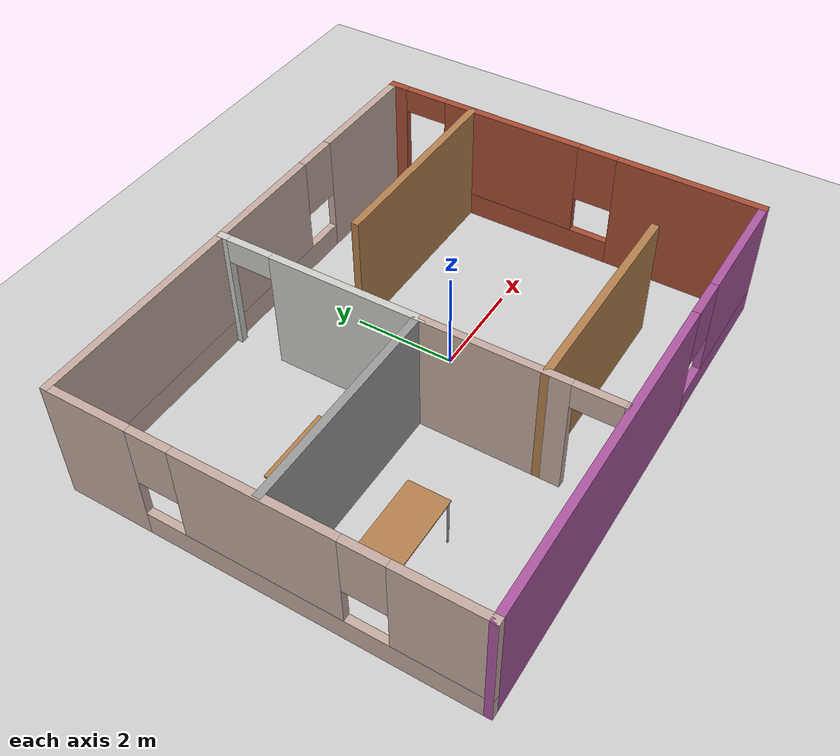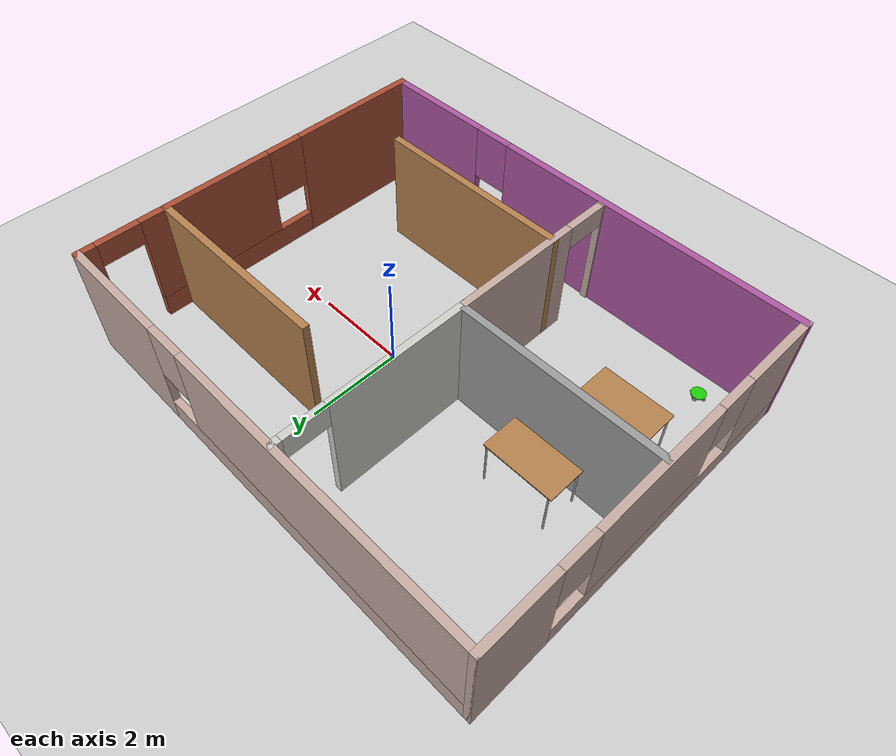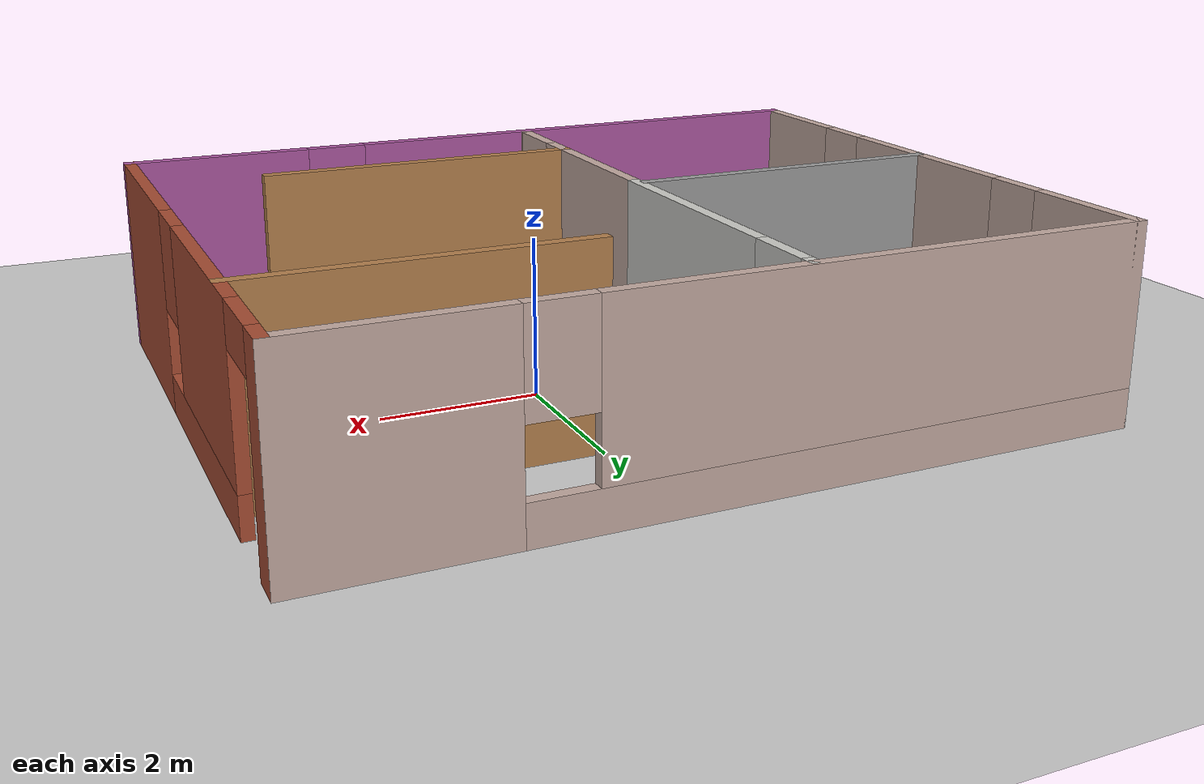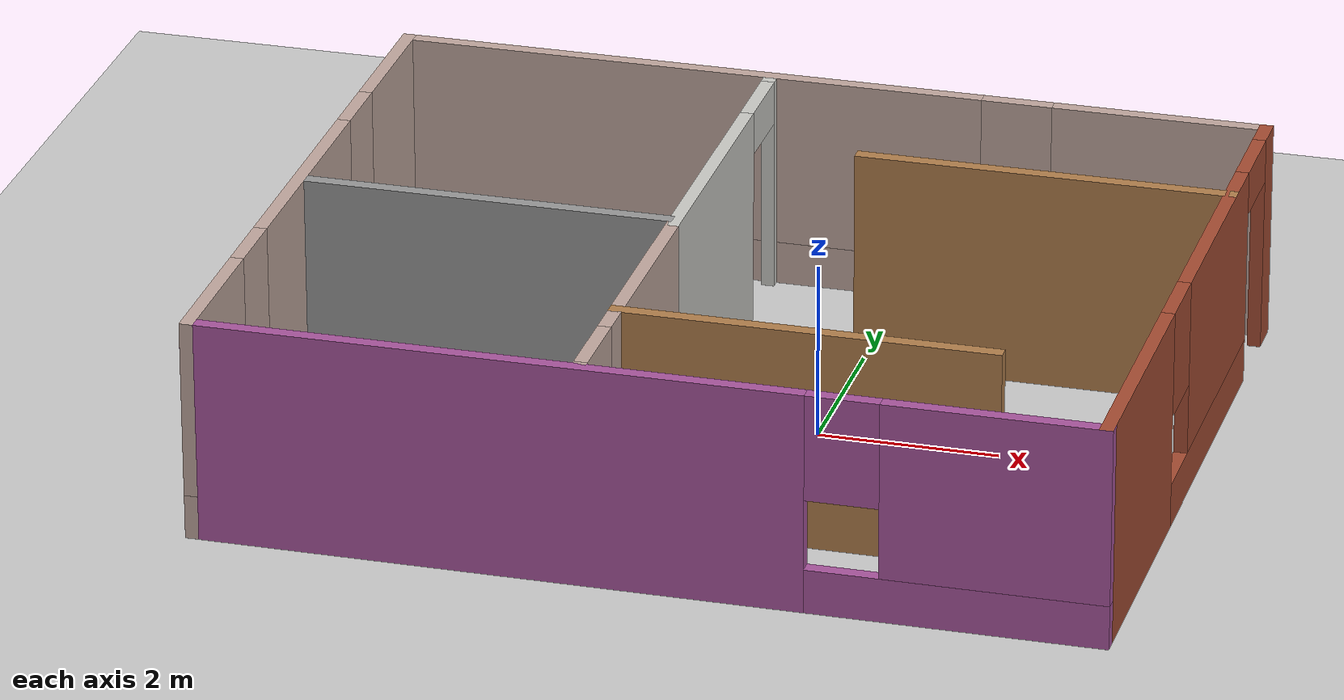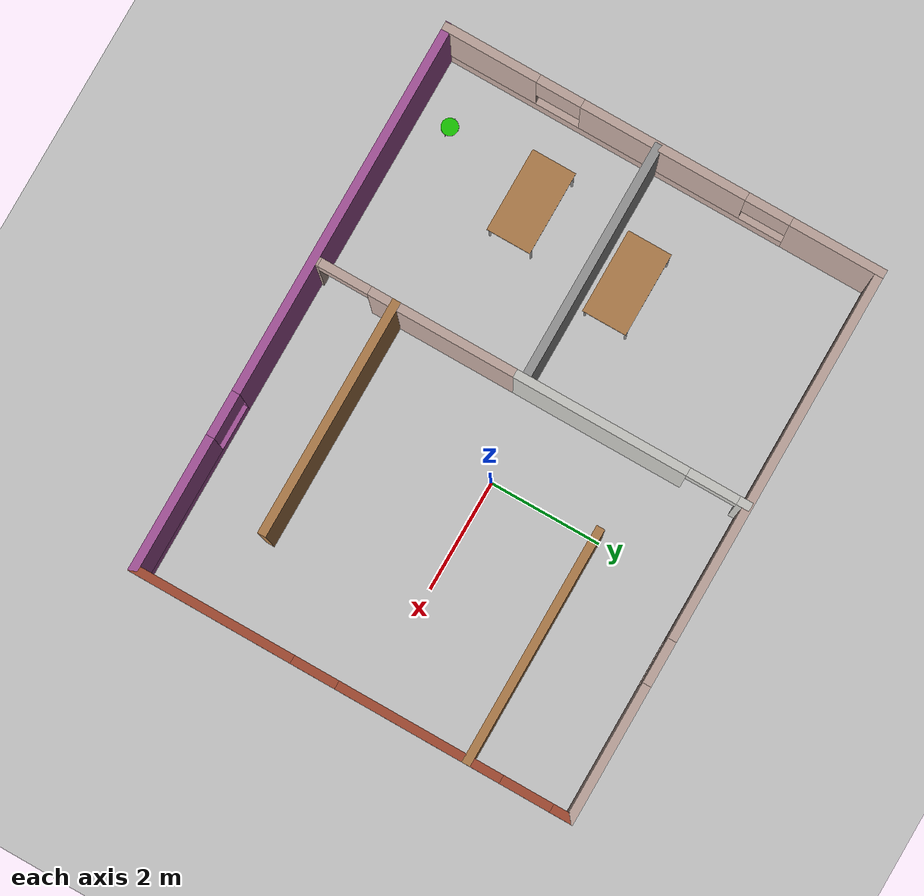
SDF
<sdf version="1.6">
 <world name="default">
  <model name="ground_plane">
   <static>1</static>
   <link name="link">
    <collision name="collision">
     <geometry><plane><normal>0 0 1</normal><size>100 100</size></plane></geometry>
     <surface><friction><ode><mu>100</mu><mu2>50</mu2></ode></friction></surface>
    </collision>
    <visual name="visual">
     <cast_shadows>0</cast_shadows>
     <geometry><plane><normal>0 0 1</normal><size>100 100</size></plane></geometry>
     <material>
      <script><uri>file://media/materials/scripts/gazebo.material</uri><name>Gazebo/Grey</name></script>
     </material>
    </visual>
   </link>
  </model>
  <model name="my_building">
   <pose>-0.837268 -0.153391 0 0 0 -3.14159</pose>
   <link name="Wall_15">
    <collision name="Wall_15_Collision">
     <geometry><box><size>4.25 0.15 2.5</size></box></geometry>
     <pose>0 0 1.25 0 -0 0</pose>
    </collision>
    <visual name="Wall_15_Visual">
     <pose>0 0 1.25 0 -0 0</pose>
     <geometry><box><size>4.25 0.15 2.5</size></box></geometry>
     <material>
      <script><uri>file://media/materials/scripts/gazebo.material</uri><name>Gazebo/Grey</name></script>
      <ambient>1 1 1 1</ambient>
     </material>
     <meta><layer>0</layer></meta>
    </visual>
    <pose>2.84042 0.103421 0 0 -0 3.14159</pose>
   </link>
   <link name="Wall_21">
    <pose>0.686687 -1.84918 0 0 -0 1.5708</pose>
    <visual name="Wall_21_Visual_0">
     <pose>-2.0108 0 1.25 0 -0 0</pose>
     <geometry><box><size>0.228407 0.15 2.5</size></box></geometry>
     <material>
      <script><uri>file://media/materials/scripts/gazebo.material</uri><name>Gazebo/CeilingTiled</name></script>
      <ambient>0.760784 0.662745 0.627451 1</ambient>
     </material>
     <meta><layer>0</layer></meta>
    </visual>
    <collision name="Wall_21_Collision_0">
     <geometry><box><size>0.228407 0.15 2.5</size></box></geometry>
     <pose>-2.0108 0 1.25 0 -0 0</pose>
    </collision>
    <visual name="Wall_21_Visual_1">
     <pose>0.564203 0 1.25 0 -0 0</pose>
     <geometry><box><size>3.12159 0.15 2.5</size></box></geometry>
     <material>
      <script><uri>file://media/materials/scripts/gazebo.material</uri><name>Gazebo/CeilingTiled</name></script>
      <ambient>0.760784 0.662745 0.627451 1</ambient>
     </material>
     <meta><layer>0</layer></meta>
    </visual>
    <collision name="Wall_21_Collision_1">
     <geometry><box><size>3.12159 0.15 2.5</size></box></geometry>
     <pose>0.564203 0 1.25 0 -0 0</pose>
    </collision>
    <visual name="Wall_21_Visual_2">
     <pose>-1.44659 0 2.25 0 -0 0</pose>
     <geometry><box><size>0.9 0.15 0.5</size></box></geometry>
     <material>
      <script><uri>file://media/materials/scripts/gazebo.material</uri><name>Gazebo/CeilingTiled</name></script>
      <ambient>0.760784 0.662745 0.627451 1</ambient>
     </material>
     <meta><layer>0</layer></meta>
    </visual>
    <collision name="Wall_21_Collision_2">
     <geometry><box><size>0.9 0.15 0.5</size></box></geometry>
     <pose>-1.44659 0 2.25 0 -0 0</pose>
    </collision>
   </link>
   <link name="Wall_22">
    <pose>0.686687 2.00082 0 0 -0 1.5708</pose>
    <visual name="Wall_22_Visual_0">
     <pose>-0.482 0 1.25 0 -0 0</pose>
     <geometry><box><size>2.786 0.15 2.5</size></box></geometry>
     <material>
      <script><uri>file://media/materials/scripts/gazebo.material</uri><name>Gazebo/Grey</name></script>
      <ambient>0.760784 0.662745 0.627451 1</ambient>
     </material>
     <meta><layer>0</layer></meta>
    </visual>
    <collision name="Wall_22_Collision_0">
     <geometry><box><size>2.786 0.15 2.5</size></box></geometry>
     <pose>-0.482 0 1.25 0 -0 0</pose>
    </collision>
    <visual name="Wall_22_Visual_1">
     <pose>1.843 0 1.25 0 -0 0</pose>
     <geometry><box><size>0.064001 0.15 2.5</size></box></geometry>
     <material>
      <script><uri>file://media/materials/scripts/gazebo.material</uri><name>Gazebo/Grey</name></script>
      <ambient>0.760784 0.662745 0.627451 1</ambient>
     </material>
     <meta><layer>0</layer></meta>
    </visual>
    <collision name="Wall_22_Collision_1">
     <geometry><box><size>0.064001 0.15 2.5</size></box></geometry>
     <pose>1.843 0 1.25 0 -0 0</pose>
    </collision>
    <visual name="Wall_22_Visual_2">
     <pose>1.361 0 2.25 0 -0 0</pose>
     <geometry><box><size>0.9 0.15 0.5</size></box></geometry>
     <material>
      <script><uri>file://media/materials/scripts/gazebo.material</uri><name>Gazebo/Grey</name></script>
      <ambient>0.760784 0.662745 0.627451 1</ambient>
     </material>
     <meta><layer>0</layer></meta>
    </visual>
    <collision name="Wall_22_Collision_2">
     <geometry><box><size>0.9 0.15 0.5</size></box></geometry>
     <pose>1.361 0 2.25 0 -0 0</pose>
    </collision>
   </link>
   <link name="Wall_24">
    <collision name="Wall_24_Collision">
     <geometry><box><size>4.25 0.15 2.5</size></box></geometry>
     <pose>0 0 1.25 0 -0 0</pose>
    </collision>
    <visual name="Wall_24_Visual">
     <pose>0 0 1.25 0 -0 0</pose>
     <geometry><box><size>4.25 0.15 2.5</size></box></geometry>
     <material>
      <script><uri>file://media/materials/scripts/gazebo.material</uri><name>Gazebo/Wood</name></script>
      <ambient>1 1 1 1</ambient>
     </material>
     <meta><layer>0</layer></meta>
    </visual>
    <pose>-2.875 -2.08896 0 0 -0 0</pose>
   </link>
   <link name="Wall_26">
    <collision name="Wall_26_Collision">
     <geometry><box><size>4.25 0.15 2.5</size></box></geometry>
     <pose>0 0 1.25 0 -0 0</pose>
    </collision>
    <visual name="Wall_26_Visual">
     <pose>0 0 1.25 0 -0 0</pose>
     <geometry><box><size>4.25 0.15 2.5</size></box></geometry>
     <material>
      <script><uri>file://media/materials/scripts/gazebo.material</uri><name>Gazebo/Wood</name></script>
      <ambient>1 1 1 1</ambient>
     </material>
     <meta><layer>0</layer></meta>
    </visual>
    <pose>-1.36331 2.45671 0 0 -0 3.14159</pose>
   </link>
   <link name="Wall_3">
    <pose>-4.925 0 0 0 0 -1.5708</pose>
    <visual name="Wall_3_Visual_0">
     <pose>-2.5333 0 1.25 0 -0 0</pose>
     <geometry><box><size>2.9334 0.15 2.5</size></box></geometry>
     <material>
      <script><uri>file://media/materials/scripts/gazebo.material</uri><name>Gazebo/Bricks</name></script>
      <ambient>1 1 1 1</ambient>
     </material>
     <meta><layer>0</layer></meta>
    </visual>
    <collision name="Wall_3_Collision_0">
     <geometry><box><size>2.9334 0.15 2.5</size></box></geometry>
     <pose>-2.5333 0 1.25 0 -0 0</pose>
    </collision>
    <visual name="Wall_3_Visual_1">
     <pose>3.79243 0 1.25 0 -0 0</pose>
     <geometry><box><size>0.415136 0.15 2.5</size></box></geometry>
     <material>
      <script><uri>file://media/materials/scripts/gazebo.material</uri><name>Gazebo/Bricks</name></script>
      <ambient>1 1 1 1</ambient>
     </material>
     <meta><layer>0</layer></meta>
    </visual>
    <collision name="Wall_3_Collision_1">
     <geometry><box><size>0.415136 0.15 2.5</size></box></geometry>
     <pose>3.79243 0 1.25 0 -0 0</pose>
    </collision>
    <visual name="Wall_3_Visual_2">
     <pose>0.809131 0 0.25 0 -0 0</pose>
     <geometry><box><size>3.75147 0.15 0.5</size></box></geometry>
     <material>
      <script><uri>file://media/materials/scripts/gazebo.material</uri><name>Gazebo/Bricks</name></script>
      <ambient>1 1 1 1</ambient>
     </material>
     <meta><layer>0</layer></meta>
    </visual>
    <collision name="Wall_3_Collision_2">
     <geometry><box><size>3.75147 0.15 0.5</size></box></geometry>
     <pose>0.809131 0 0.25 0 -0 0</pose>
    </collision>
    <visual name="Wall_3_Visual_3">
     <pose>1.20913 0 1.5 0 -0 0</pose>
     <geometry><box><size>2.95146 0.15 2</size></box></geometry>
     <material>
      <script><uri>file://media/materials/scripts/gazebo.material</uri><name>Gazebo/Bricks</name></script>
      <ambient>1 1 1 1</ambient>
     </material>
     <meta><layer>0</layer></meta>
    </visual>
    <collision name="Wall_3_Collision_3">
     <geometry><box><size>2.95146 0.15 2</size></box></geometry>
     <pose>1.20913 0 1.5 0 -0 0</pose>
    </collision>
    <visual name="Wall_3_Visual_4">
     <pose>-0.666601 0 1.9 0 -0 0</pose>
     <geometry><box><size>0.8 0.15 1.2</size></box></geometry>
     <material>
      <script><uri>file://media/materials/scripts/gazebo.material</uri><name>Gazebo/Bricks</name></script>
      <ambient>1 1 1 1</ambient>
     </material>
     <meta><layer>0</layer></meta>
    </visual>
    <collision name="Wall_3_Collision_4">
     <geometry><box><size>0.8 0.15 1.2</size></box></geometry>
     <pose>-0.666601 0 1.9 0 -0 0</pose>
    </collision>
    <visual name="Wall_3_Visual_5">
     <pose>3.13486 0 2.25 0 -0 0</pose>
     <geometry><box><size>0.9 0.15 0.5</size></box></geometry>
     <material>
      <script><uri>file://media/materials/scripts/gazebo.material</uri><name>Gazebo/Bricks</name></script>
      <ambient>1 1 1 1</ambient>
     </material>
     <meta><layer>0</layer></meta>
    </visual>
    <collision name="Wall_3_Collision_5">
     <geometry><box><size>0.9 0.15 0.5</size></box></geometry>
     <pose>3.13486 0 2.25 0 -0 0</pose>
    </collision>
   </link>
   <link name="Wall_6">
    <pose>0 -3.925 0 0 -0 0</pose>
    <visual name="Wall_6_Visual_0">
     <pose>-3.76461 0 1.25 0 -0 0</pose>
     <geometry><box><size>2.47079 0.15 2.5</size></box></geometry>
     <material>
      <script><uri>file://media/materials/scripts/gazebo.material</uri><name>Gazebo/Grey</name></script>
      <ambient>0.760784 0.662745 0.627451 1</ambient>
     </material>
     <meta><layer>0</layer></meta>
    </visual>
    <collision name="Wall_6_Collision_0">
     <geometry><box><size>2.47079 0.15 2.5</size></box></geometry>
     <pose>-3.76461 0 1.25 0 -0 0</pose>
    </collision>
    <visual name="Wall_6_Visual_1">
     <pose>1.23539 0 0.25 0 -0 0</pose>
     <geometry><box><size>7.52921 0.15 0.5</size></box></geometry>
     <material>
      <script><uri>file://media/materials/scripts/gazebo.material</uri><name>Gazebo/Grey</name></script>
      <ambient>0.760784 0.662745 0.627451 1</ambient>
     </material>
     <meta><layer>0</layer></meta>
    </visual>
    <collision name="Wall_6_Collision_1">
     <geometry><box><size>7.52921 0.15 0.5</size></box></geometry>
     <pose>1.23539 0 0.25 0 -0 0</pose>
    </collision>
    <visual name="Wall_6_Visual_2">
     <pose>1.63539 0 1.5 0 -0 0</pose>
     <geometry><box><size>6.72921 0.15 2</size></box></geometry>
     <material>
      <script><uri>file://media/materials/scripts/gazebo.material</uri><name>Gazebo/Grey</name></script>
      <ambient>0.760784 0.662745 0.627451 1</ambient>
     </material>
     <meta><layer>0</layer></meta>
    </visual>
    <collision name="Wall_6_Collision_2">
     <geometry><box><size>6.72921 0.15 2</size></box></geometry>
     <pose>1.63539 0 1.5 0 -0 0</pose>
    </collision>
    <visual name="Wall_6_Visual_3">
     <pose>-2.12921 0 1.9 0 -0 0</pose>
     <geometry><box><size>0.8 0.15 1.2</size></box></geometry>
     <material>
      <script><uri>file://media/materials/scripts/gazebo.material</uri><name>Gazebo/Grey</name></script>
      <ambient>0.760784 0.662745 0.627451 1</ambient>
     </material>
     <meta><layer>0</layer></meta>
    </visual>
    <collision name="Wall_6_Collision_3">
     <geometry><box><size>0.8 0.15 1.2</size></box></geometry>
     <pose>-2.12921 0 1.9 0 -0 0</pose>
    </collision>
   </link>
   <link name="Wall_8">
    <pose>4.925 0 0 0 -0 1.5708</pose>
    <visual name="Wall_8_Visual_0">
     <pose>-3.15397 0 1.25 0 -0 0</pose>
     <geometry><box><size>1.69206 0.15 2.5</size></box></geometry>
     <material>
      <script><uri>file://media/materials/scripts/gazebo.material</uri><name>Gazebo/Grey</name></script>
      <ambient>0.760784 0.662745 0.627451 1</ambient>
     </material>
     <meta><layer>0</layer></meta>
    </visual>
    <collision name="Wall_8_Collision_0">
     <geometry><box><size>1.69206 0.15 2.5</size></box></geometry>
     <pose>-3.15397 0 1.25 0 -0 0</pose>
    </collision>
    <visual name="Wall_8_Visual_1">
     <pose>0.846032 0 0.25 0 -0 0</pose>
     <geometry><box><size>6.30794 0.15 0.5</size></box></geometry>
     <material>
      <script><uri>file://media/materials/scripts/gazebo.material</uri><name>Gazebo/Grey</name></script>
      <ambient>0.760784 0.662745 0.627451 1</ambient>
     </material>
     <meta><layer>0</layer></meta>
    </visual>
    <collision name="Wall_8_Collision_1">
     <geometry><box><size>6.30794 0.15 0.5</size></box></geometry>
     <pose>0.846032 0 0.25 0 -0 0</pose>
    </collision>
    <visual name="Wall_8_Visual_2">
     <pose>-0.01726 0 1.5 0 -0 0</pose>
     <geometry><box><size>2.98135 0.15 2</size></box></geometry>
     <material>
      <script><uri>file://media/materials/scripts/gazebo.material</uri><name>Gazebo/Grey</name></script>
      <ambient>0.760784 0.662745 0.627451 1</ambient>
     </material>
     <meta><layer>0</layer></meta>
    </visual>
    <collision name="Wall_8_Collision_2">
     <geometry><box><size>2.98135 0.15 2</size></box></geometry>
     <pose>-0.01726 0 1.5 0 -0 0</pose>
    </collision>
    <visual name="Wall_8_Visual_3">
     <pose>3.13671 0 1.5 0 -0 0</pose>
     <geometry><box><size>1.72658 0.15 2</size></box></geometry>
     <material>
      <script><uri>file://media/materials/scripts/gazebo.material</uri><name>Gazebo/Grey</name></script>
      <ambient>0.760784 0.662745 0.627451 1</ambient>
     </material>
     <meta><layer>0</layer></meta>
    </visual>
    <collision name="Wall_8_Collision_3">
     <geometry><box><size>1.72658 0.15 2</size></box></geometry>
     <pose>3.13671 0 1.5 0 -0 0</pose>
    </collision>
    <visual name="Wall_8_Visual_4">
     <pose>-1.90794 0 1.9 0 -0 0</pose>
     <geometry><box><size>0.8 0.15 1.2</size></box></geometry>
     <material>
      <script><uri>file://media/materials/scripts/gazebo.material</uri><name>Gazebo/Grey</name></script>
      <ambient>0.760784 0.662745 0.627451 1</ambient>
     </material>
     <meta><layer>0</layer></meta>
    </visual>
    <collision name="Wall_8_Collision_4">
     <geometry><box><size>0.8 0.15 1.2</size></box></geometry>
     <pose>-1.90794 0 1.9 0 -0 0</pose>
    </collision>
    <visual name="Wall_8_Visual_5">
     <pose>1.87342 0 1.9 0 -0 0</pose>
     <geometry><box><size>0.8 0.15 1.2</size></box></geometry>
     <material>
      <script><uri>file://media/materials/scripts/gazebo.material</uri><name>Gazebo/Grey</name></script>
      <ambient>0.760784 0.662745 0.627451 1</ambient>
     </material>
     <meta><layer>0</layer></meta>
    </visual>
    <collision name="Wall_8_Collision_5">
     <geometry><box><size>0.8 0.15 1.2</size></box></geometry>
     <pose>1.87342 0 1.9 0 -0 0</pose>
    </collision>
   </link>
   <link name="Wall_9">
    <pose>0 3.925 0 0 -0 3.14159</pose>
    <visual name="Wall_9_Visual_0">
     <pose>-1.62534 0 1.25 0 -0 0</pose>
     <geometry><box><size>6.74933 0.15 2.5</size></box></geometry>
     <material>
      <script><uri>file://media/materials/scripts/gazebo.material</uri><name>Gazebo/Grey</name></script>
      <ambient>0.666667 0.337255 0.623529 1</ambient>
     </material>
     <meta><layer>0</layer></meta>
    </visual>
    <collision name="Wall_9_Collision_0">
     <geometry><box><size>6.74933 0.15 2.5</size></box></geometry>
     <pose>-1.62534 0 1.25 0 -0 0</pose>
    </collision>
    <visual name="Wall_9_Visual_1">
     <pose>3.37466 0 0.25 0 -0 0</pose>
     <geometry><box><size>3.25067 0.15 0.5</size></box></geometry>
     <material>
      <script><uri>file://media/materials/scripts/gazebo.material</uri><name>Gazebo/Grey</name></script>
      <ambient>0.666667 0.337255 0.623529 1</ambient>
     </material>
     <meta><layer>0</layer></meta>
    </visual>
    <collision name="Wall_9_Collision_1">
     <geometry><box><size>3.25067 0.15 0.5</size></box></geometry>
     <pose>3.37466 0 0.25 0 -0 0</pose>
    </collision>
    <visual name="Wall_9_Visual_2">
     <pose>3.77466 0 1.5 0 -0 0</pose>
     <geometry><box><size>2.45067 0.15 2</size></box></geometry>
     <material>
      <script><uri>file://media/materials/scripts/gazebo.material</uri><name>Gazebo/Grey</name></script>
      <ambient>0.666667 0.337255 0.623529 1</ambient>
     </material>
     <meta><layer>0</layer></meta>
    </visual>
    <collision name="Wall_9_Collision_2">
     <geometry><box><size>2.45067 0.15 2</size></box></geometry>
     <pose>3.77466 0 1.5 0 -0 0</pose>
    </collision>
    <visual name="Wall_9_Visual_3">
     <pose>2.14933 0 1.9 0 -0 0</pose>
     <geometry><box><size>0.8 0.15 1.2</size></box></geometry>
     <material>
      <script><uri>file://media/materials/scripts/gazebo.material</uri><name>Gazebo/Grey</name></script>
      <ambient>0.666667 0.337255 0.623529 1</ambient>
     </material>
     <meta><layer>0</layer></meta>
    </visual>
    <collision name="Wall_9_Collision_3">
     <geometry><box><size>0.8 0.15 1.2</size></box></geometry>
     <pose>2.14933 0 1.9 0 -0 0</pose>
    </collision>
   </link>
   <static>1</static>
  </model>
  <model name="table">
   <static>1</static>
   <link name="link">
    <collision name="surface">
     <pose>0 0 1 0 -0 0</pose>
     <geometry><box><size>1.5 0.8 0.03</size></box></geometry>
     <surface><friction><ode><mu>0.6</mu><mu2>0.6</mu2></ode></friction></surface>
    </collision>
    <visual name="visual1">
     <pose>0 0 1 0 -0 0</pose>
     <geometry><box><size>1.5 0.8 0.03</size></box></geometry>
     <material>
      <script><uri>file://media/materials/scripts/gazebo.material</uri><name>Gazebo/Wood</name></script>
     </material>
    </visual>
    <collision name="front_left_leg">
     <pose>0.68 0.38 0.5 0 -0 0</pose>
     <geometry><cylinder><radius>0.02</radius><length>1</length></cylinder></geometry>
    </collision>
    <visual name="front_left_leg">
     <pose>0.68 0.38 0.5 0 -0 0</pose>
     <geometry><cylinder><radius>0.02</radius><length>1</length></cylinder></geometry>
     <material>
      <script><uri>file://media/materials/scripts/gazebo.material</uri><name>Gazebo/Grey</name></script>
     </material>
    </visual>
    <collision name="front_right_leg">
     <pose>0.68 -0.38 0.5 0 -0 0</pose>
     <geometry><cylinder><radius>0.02</radius><length>1</length></cylinder></geometry>
    </collision>
    <visual name="front_right_leg">
     <pose>0.68 -0.38 0.5 0 -0 0</pose>
     <geometry><cylinder><radius>0.02</radius><length>1</length></cylinder></geometry>
     <material>
      <script><uri>file://media/materials/scripts/gazebo.material</uri><name>Gazebo/Grey</name></script>
     </material>
    </visual>
    <collision name="back_right_leg">
     <pose>-0.68 -0.38 0.5 0 -0 0</pose>
     <geometry><cylinder><radius>0.02</radius><length>1</length></cylinder></geometry>
    </collision>
    <visual name="back_right_leg">
     <pose>-0.68 -0.38 0.5 0 -0 0</pose>
     <geometry><cylinder><radius>0.02</radius><length>1</length></cylinder></geometry>
     <material>
      <script><uri>file://media/materials/scripts/gazebo.material</uri><name>Gazebo/Grey</name></script>
     </material>
    </visual>
    <collision name="back_left_leg">
     <pose>-0.68 0.38 0.5 0 -0 0</pose>
     <geometry><cylinder><radius>0.02</radius><length>1</length></cylinder></geometry>
    </collision>
    <visual name="back_left_leg">
     <pose>-0.68 0.38 0.5 0 -0 0</pose>
     <geometry><cylinder><radius>0.02</radius><length>1</length></cylinder></geometry>
     <material>
      <script><uri>file://media/materials/scripts/gazebo.material</uri><name>Gazebo/Grey</name></script>
     </material>
    </visual>
   </link>
   <pose>-4.19604 -1.654 0 0 -0 0</pose>
  </model>
  <model name="table_0">
   <static>1</static>
   <link name="link">
    <collision name="surface">
     <pose>0 0 1 0 -0 0</pose>
     <geometry><box><size>1.5 0.8 0.03</size></box></geometry>
     <surface><friction><ode><mu>0.6</mu><mu2>0.6</mu2></ode></friction></surface>
    </collision>
    <visual name="visual1">
     <pose>0 0 1 0 -0 0</pose>
     <geometry><box><size>1.5 0.8 0.03</size></box></geometry>
     <material>
      <script><uri>file://media/materials/scripts/gazebo.material</uri><name>Gazebo/Wood</name></script>
     </material>
    </visual>
    <collision name="front_left_leg">
     <pose>0.68 0.38 0.5 0 -0 0</pose>
     <geometry><cylinder><radius>0.02</radius><length>1</length></cylinder></geometry>
    </collision>
    <visual name="front_left_leg">
     <pose>0.68 0.38 0.5 0 -0 0</pose>
     <geometry><cylinder><radius>0.02</radius><length>1</length></cylinder></geometry>
     <material>
      <script><uri>file://media/materials/scripts/gazebo.material</uri><name>Gazebo/Grey</name></script>
     </material>
    </visual>
    <collision name="front_right_leg">
     <pose>0.68 -0.38 0.5 0 -0 0</pose>
     <geometry><cylinder><radius>0.02</radius><length>1</length></cylinder></geometry>
    </collision>
    <visual name="front_right_leg">
     <pose>0.68 -0.38 0.5 0 -0 0</pose>
     <geometry><cylinder><radius>0.02</radius><length>1</length></cylinder></geometry>
     <material>
      <script><uri>file://media/materials/scripts/gazebo.material</uri><name>Gazebo/Grey</name></script>
     </material>
    </visual>
    <collision name="back_right_leg">
     <pose>-0.68 -0.38 0.5 0 -0 0</pose>
     <geometry><cylinder><radius>0.02</radius><length>1</length></cylinder></geometry>
    </collision>
    <visual name="back_right_leg">
     <pose>-0.68 -0.38 0.5 0 -0 0</pose>
     <geometry><cylinder><radius>0.02</radius><length>1</length></cylinder></geometry>
     <material>
      <script><uri>file://media/materials/scripts/gazebo.material</uri><name>Gazebo/Grey</name></script>
     </material>
    </visual>
    <collision name="back_left_leg">
     <pose>-0.68 0.38 0.5 0 -0 0</pose>
     <geometry><cylinder><radius>0.02</radius><length>1</length></cylinder></geometry>
    </collision>
    <visual name="back_left_leg">
     <pose>-0.68 0.38 0.5 0 -0 0</pose>
     <geometry><cylinder><radius>0.02</radius><length>1</length></cylinder></geometry>
     <material>
      <script><uri>file://media/materials/scripts/gazebo.material</uri><name>Gazebo/Grey</name></script>
     </material>
    </visual>
   </link>
   <pose>-3.81431 0.334745 0 0 -0 0</pose>
  </model>
  <model name="my_model_1">
   <link name="link_0">
    <pose>0 0 0.034444 0 -0 0</pose>
    <inertial>
     <mass>1</mass>
     <inertia><ixx>0.145833</ixx><ixy>0</ixy><ixz>0</ixz><iyy>0.145833</iyy><iyz>0</iyz><izz>0.125</izz></inertia>
    </inertial>
    <visual name="visual">
     <geometry><cylinder><radius>0.15</radius><length>0.02</length></cylinder></geometry>
     <material>
      <lighting>1</lighting>
      <script><uri>file://media/materials/scripts/gazebo.material</uri><name>Gazebo/Grey</name></script>
      <shader type="pixel"><normal_map>__default__</normal_map></shader>
      <ambient>0.01 0.5 0.01 1</ambient>
      <diffuse>0.1 0.8 0.01 1</diffuse>
      <specular>0.01 0.01 0.01 1</specular>
      <emissive>0 0 0 1</emissive>
     </material>
    </visual>
    <collision name="collision">
     <geometry><cylinder><radius>0.15</radius><length>0.02</length></cylinder></geometry>
     <surface>
      <friction>
       <ode><mu>1</mu><mu2>1</mu2><fdir1>0 0 0</fdir1><slip1>0</slip1><slip2>0</slip2></ode>
       <torsional>
        <coefficient>1</coefficient>
        <patch_radius>0</patch_radius>
        <surface_radius>0</surface_radius>
        <use_patch_radius>1</use_patch_radius>
        <ode><slip>0</slip></ode>
       </torsional>
      </friction>
      <bounce><restitution_coefficient>0</restitution_coefficient><threshold>1e+06</threshold></bounce>
      <contact>
       <collide_without_contact>0</collide_without_contact>
       <collide_without_contact_bitmask>1</collide_without_contact_bitmask>
       <collide_bitmask>1</collide_bitmask>
       <ode>
        <soft_cfm>0</soft_cfm>
        <soft_erp>0.2</soft_erp>
        <kp>1e+13</kp>
        <kd>1</kd>
        <max_vel>0.01</max_vel>
        <min_depth>0</min_depth>
       </ode>
       <bullet>
        <split_impulse>1</split_impulse>
        <split_impulse_penetration_threshold>-0.01</split_impulse_penetration_threshold>
        <soft_cfm>0</soft_cfm>
        <soft_erp>0.2</soft_erp>
        <kp>1e+13</kp>
        <kd>1</kd>
       </bullet>
      </contact>
     </surface>
    </collision>
   </link>
   <link name="link_1">
    <pose>0.12 0 -0.030556 1.5708 -0 0</pose>
    <inertial>
     <mass>1</mass>
     <inertia><ixx>0.145833</ixx><ixy>0</ixy><ixz>0</ixz><iyy>0.145833</iyy><iyz>0</iyz><izz>0.125</izz></inertia>
    </inertial>
    <visual name="visual">
     <geometry><cylinder><radius>0.05</radius><length>0.01</length></cylinder></geometry>
     <material>
      <lighting>1</lighting>
      <script><uri>file://media/materials/scripts/gazebo.material</uri><name>Gazebo/Grey</name></script>
      <shader type="pixel"><normal_map>__default__</normal_map></shader>
      <ambient>0.4 0.4 0.4 1</ambient>
      <diffuse>0.4 0.4 0.4 1</diffuse>
      <specular>0.01 0.01 0.01 1</specular>
      <emissive>0 0 0 1</emissive>
     </material>
    </visual>
    <collision name="collision">
     <geometry><cylinder><radius>0.05</radius><length>0.01</length></cylinder></geometry>
     <surface>
      <friction>
       <ode><mu>1</mu><mu2>1</mu2><fdir1>0 0 0</fdir1><slip1>0</slip1><slip2>0</slip2></ode>
       <torsional>
        <coefficient>1</coefficient>
        <patch_radius>0</patch_radius>
        <surface_radius>0</surface_radius>
        <use_patch_radius>1</use_patch_radius>
        <ode><slip>0</slip></ode>
       </torsional>
      </friction>
      <bounce><restitution_coefficient>0</restitution_coefficient><threshold>1e+06</threshold></bounce>
      <contact>
       <collide_without_contact>0</collide_without_contact>
       <collide_without_contact_bitmask>1</collide_without_contact_bitmask>
       <collide_bitmask>1</collide_bitmask>
       <ode>
        <soft_cfm>0</soft_cfm>
        <soft_erp>0.2</soft_erp>
        <kp>1e+13</kp>
        <kd>1</kd>
        <max_vel>0.01</max_vel>
        <min_depth>0</min_depth>
       </ode>
       <bullet>
        <split_impulse>1</split_impulse>
        <split_impulse_penetration_threshold>-0.01</split_impulse_penetration_threshold>
        <soft_cfm>0</soft_cfm>
        <soft_erp>0.2</soft_erp>
        <kp>1e+13</kp>
        <kd>1</kd>
       </bullet>
      </contact>
     </surface>
    </collision>
   </link>
   <link name="link_1_clone">
    <pose>0 0.12 -0.030556 1.5708 -0 0</pose>
    <inertial>
     <mass>1</mass>
     <inertia><ixx>0.145833</ixx><ixy>0</ixy><ixz>0</ixz><iyy>0.145833</iyy><iyz>0</iyz><izz>0.125</izz></inertia>
    </inertial>
    <visual name="visual">
     <geometry><cylinder><radius>0.05</radius><length>0.01</length></cylinder></geometry>
     <material>
      <lighting>1</lighting>
      <script><uri>file://media/materials/scripts/gazebo.material</uri><name>Gazebo/Grey</name></script>
      <shader type="pixel"><normal_map>__default__</normal_map></shader>
      <ambient>0.4 0.4 0.4 1</ambient>
      <diffuse>0.4 0.4 0.4 1</diffuse>
      <specular>0.01 0.01 0.01 1</specular>
      <emissive>0 0 0 1</emissive>
     </material>
    </visual>
    <collision name="collision">
     <geometry><cylinder><radius>0.05</radius><length>0.01</length></cylinder></geometry>
     <surface>
      <friction>
       <ode><mu>1</mu><mu2>1</mu2><fdir1>0 0 0</fdir1><slip1>0</slip1><slip2>0</slip2></ode>
       <torsional>
        <coefficient>1</coefficient>
        <patch_radius>0</patch_radius>
        <surface_radius>0</surface_radius>
        <use_patch_radius>1</use_patch_radius>
        <ode><slip>0</slip></ode>
       </torsional>
      </friction>
      <bounce><restitution_coefficient>0</restitution_coefficient><threshold>1e+06</threshold></bounce>
      <contact>
       <collide_without_contact>0</collide_without_contact>
       <collide_without_contact_bitmask>1</collide_without_contact_bitmask>
       <collide_bitmask>1</collide_bitmask>
       <ode>
        <soft_cfm>0</soft_cfm>
        <soft_erp>0.2</soft_erp>
        <kp>1e+13</kp>
        <kd>1</kd>
        <max_vel>0.01</max_vel>
        <min_depth>0</min_depth>
       </ode>
       <bullet>
        <split_impulse>1</split_impulse>
        <split_impulse_penetration_threshold>-0.01</split_impulse_penetration_threshold>
        <soft_cfm>0</soft_cfm>
        <soft_erp>0.2</soft_erp>
        <kp>1e+13</kp>
        <kd>1</kd>
       </bullet>
      </contact>
     </surface>
    </collision>
   </link>
   <link name="link_1_clone_0">
    <pose>0 -0.12 -0.030556 1.5708 -0 0</pose>
    <inertial>
     <mass>1</mass>
     <inertia><ixx>0.145833</ixx><ixy>0</ixy><ixz>0</ixz><iyy>0.145833</iyy><iyz>0</iyz><izz>0.125</izz></inertia>
    </inertial>
    <visual name="visual">
     <geometry><cylinder><radius>0.05</radius><length>0.01</length></cylinder></geometry>
     <material>
      <lighting>1</lighting>
      <script><uri>file://media/materials/scripts/gazebo.material</uri><name>Gazebo/Grey</name></script>
      <shader type="pixel"><normal_map>__default__</normal_map></shader>
      <ambient>0.4 0.4 0.4 1</ambient>
      <diffuse>0.4 0.4 0.4 1</diffuse>
      <specular>0.01 0.01 0.01 1</specular>
      <emissive>0 0 0 1</emissive>
     </material>
    </visual>
    <collision name="collision">
     <geometry><cylinder><radius>0.05</radius><length>0.01</length></cylinder></geometry>
     <surface>
      <friction>
       <ode><mu>1</mu><mu2>1</mu2><fdir1>0 0 0</fdir1><slip1>0</slip1><slip2>0</slip2></ode>
       <torsional>
        <coefficient>1</coefficient>
        <patch_radius>0</patch_radius>
        <surface_radius>0</surface_radius>
        <use_patch_radius>1</use_patch_radius>
        <ode><slip>0</slip></ode>
       </torsional>
      </friction>
      <bounce><restitution_coefficient>0</restitution_coefficient><threshold>1e+06</threshold></bounce>
      <contact>
       <collide_without_contact>0</collide_without_contact>
       <collide_without_contact_bitmask>1</collide_without_contact_bitmask>
       <collide_bitmask>1</collide_bitmask>
       <ode>
        <soft_cfm>0</soft_cfm>
        <soft_erp>0.2</soft_erp>
        <kp>1e+13</kp>
        <kd>1</kd>
        <max_vel>0.01</max_vel>
        <min_depth>0</min_depth>
       </ode>
       <bullet>
        <split_impulse>1</split_impulse>
        <split_impulse_penetration_threshold>-0.01</split_impulse_penetration_threshold>
        <soft_cfm>0</soft_cfm>
        <soft_erp>0.2</soft_erp>
        <kp>1e+13</kp>
        <kd>1</kd>
       </bullet>
      </contact>
     </surface>
    </collision>
   </link>
   <link name="link_1_clone_1">
    <pose>-0.12 0 -0.030556 1.5708 -0 0</pose>
    <inertial>
     <mass>1</mass>
     <inertia><ixx>0.145833</ixx><ixy>0</ixy><ixz>0</ixz><iyy>0.145833</iyy><iyz>0</iyz><izz>0.125</izz></inertia>
    </inertial>
    <visual name="visual">
     <geometry><cylinder><radius>0.05</radius><length>0.01</length></cylinder></geometry>
     <material>
      <lighting>1</lighting>
      <script><uri>file://media/materials/scripts/gazebo.material</uri><name>Gazebo/Grey</name></script>
      <shader type="pixel"><normal_map>__default__</normal_map></shader>
      <ambient>0.4 0.4 0.4 1</ambient>
      <diffuse>0.4 0.4 0.4 1</diffuse>
      <specular>0.01 0.01 0.01 1</specular>
      <emissive>0 0 0 1</emissive>
     </material>
    </visual>
    <collision name="collision">
     <geometry><cylinder><radius>0.05</radius><length>0.01</length></cylinder></geometry>
     <surface>
      <friction>
       <ode><mu>1</mu><mu2>1</mu2><fdir1>0 0 0</fdir1><slip1>0</slip1><slip2>0</slip2></ode>
       <torsional>
        <coefficient>1</coefficient>
        <patch_radius>0</patch_radius>
        <surface_radius>0</surface_radius>
        <use_patch_radius>1</use_patch_radius>
        <ode><slip>0</slip></ode>
       </torsional>
      </friction>
      <bounce><restitution_coefficient>0</restitution_coefficient><threshold>1e+06</threshold></bounce>
      <contact>
       <collide_without_contact>0</collide_without_contact>
       <collide_without_contact_bitmask>1</collide_without_contact_bitmask>
       <collide_bitmask>1</collide_bitmask>
       <ode>
        <soft_cfm>0</soft_cfm>
        <soft_erp>0.2</soft_erp>
        <kp>1e+13</kp>
        <kd>1</kd>
        <max_vel>0.01</max_vel>
        <min_depth>0</min_depth>
       </ode>
       <bullet>
        <split_impulse>1</split_impulse>
        <split_impulse_penetration_threshold>-0.01</split_impulse_penetration_threshold>
        <soft_cfm>0</soft_cfm>
        <soft_erp>0.2</soft_erp>
        <kp>1e+13</kp>
        <kd>1</kd>
       </bullet>
      </contact>
     </surface>
    </collision>
   </link>
   <link name="link_3">
    <pose>-0.12 0 0.021944 0 -0 0</pose>
    <inertial>
     <mass>1</mass>
     <inertia><ixx>0.145833</ixx><ixy>0</ixy><ixz>0</ixz><iyy>0.145833</iyy><iyz>0</iyz><izz>0.125</izz></inertia>
    </inertial>
    <visual name="visual">
     <geometry><cylinder><radius>0.03</radius><length>0.005</length></cylinder></geometry>
     <material>
      <lighting>1</lighting>
      <script><uri>file://media/materials/scripts/gazebo.material</uri><name>Gazebo/Grey</name></script>
      <shader type="pixel"><normal_map>__default__</normal_map></shader>
      <ambient>0.3 0.3 0.7 1</ambient>
      <diffuse>0.7 0.7 0.9 1</diffuse>
      <specular>0.01 0.01 0.01 1</specular>
      <emissive>0 0 0 1</emissive>
     </material>
    </visual>
    <collision name="collision">
     <geometry><cylinder><radius>0.03</radius><length>0.005</length></cylinder></geometry>
     <surface>
      <friction>
       <ode><mu>1</mu><mu2>1</mu2><fdir1>0 0 0</fdir1><slip1>0</slip1><slip2>0</slip2></ode>
       <torsional>
        <coefficient>1</coefficient>
        <patch_radius>0</patch_radius>
        <surface_radius>0</surface_radius>
        <use_patch_radius>1</use_patch_radius>
        <ode><slip>0</slip></ode>
       </torsional>
      </friction>
      <bounce><restitution_coefficient>0</restitution_coefficient><threshold>1e+06</threshold></bounce>
      <contact>
       <collide_without_contact>0</collide_without_contact>
       <collide_without_contact_bitmask>1</collide_without_contact_bitmask>
       <collide_bitmask>1</collide_bitmask>
       <ode>
        <soft_cfm>0</soft_cfm>
        <soft_erp>0.2</soft_erp>
        <kp>1e+13</kp>
        <kd>1</kd>
        <max_vel>0.01</max_vel>
        <min_depth>0</min_depth>
       </ode>
       <bullet>
        <split_impulse>1</split_impulse>
        <split_impulse_penetration_threshold>-0.01</split_impulse_penetration_threshold>
        <soft_cfm>0</soft_cfm>
        <soft_erp>0.2</soft_erp>
        <kp>1e+13</kp>
        <kd>1</kd>
       </bullet>
      </contact>
     </surface>
    </collision>
   </link>
   <link name="link_3_clone">
    <pose>0.12 0 0.021944 0 -0 0</pose>
    <inertial>
     <mass>1</mass>
     <inertia><ixx>0.145833</ixx><ixy>0</ixy><ixz>0</ixz><iyy>0.145833</iyy><iyz>0</iyz><izz>0.125</izz></inertia>
    </inertial>
    <visual name="visual">
     <geometry><cylinder><radius>0.03</radius><length>0.005</length></cylinder></geometry>
     <material>
      <lighting>1</lighting>
      <script><uri>file://media/materials/scripts/gazebo.material</uri><name>Gazebo/Grey</name></script>
      <shader type="pixel"><normal_map>__default__</normal_map></shader>
      <ambient>0.3 0.3 0.7 1</ambient>
      <diffuse>0.7 0.7 0.9 1</diffuse>
      <specular>0.01 0.01 0.01 1</specular>
      <emissive>0 0 0 1</emissive>
     </material>
    </visual>
    <collision name="collision">
     <geometry><cylinder><radius>0.03</radius><length>0.005</length></cylinder></geometry>
     <surface>
      <friction>
       <ode><mu>1</mu><mu2>1</mu2><fdir1>0 0 0</fdir1><slip1>0</slip1><slip2>0</slip2></ode>
       <torsional>
        <coefficient>1</coefficient>
        <patch_radius>0</patch_radius>
        <surface_radius>0</surface_radius>
        <use_patch_radius>1</use_patch_radius>
        <ode><slip>0</slip></ode>
       </torsional>
      </friction>
      <bounce><restitution_coefficient>0</restitution_coefficient><threshold>1e+06</threshold></bounce>
      <contact>
       <collide_without_contact>0</collide_without_contact>
       <collide_without_contact_bitmask>1</collide_without_contact_bitmask>
       <collide_bitmask>1</collide_bitmask>
       <ode>
        <soft_cfm>0</soft_cfm>
        <soft_erp>0.2</soft_erp>
        <kp>1e+13</kp>
        <kd>1</kd>
        <max_vel>0.01</max_vel>
        <min_depth>0</min_depth>
       </ode>
       <bullet>
        <split_impulse>1</split_impulse>
        <split_impulse_penetration_threshold>-0.01</split_impulse_penetration_threshold>
        <soft_cfm>0</soft_cfm>
        <soft_erp>0.2</soft_erp>
        <kp>1e+13</kp>
        <kd>1</kd>
       </bullet>
      </contact>
     </surface>
    </collision>
   </link>
   <link name="link_3_clone_0">
    <pose>0 0.12 0.021944 0 -0 0</pose>
    <inertial>
     <mass>1</mass>
     <inertia><ixx>0.145833</ixx><ixy>0</ixy><ixz>0</ixz><iyy>0.145833</iyy><iyz>0</iyz><izz>0.125</izz></inertia>
    </inertial>
    <visual name="visual">
     <geometry><cylinder><radius>0.03</radius><length>0.005</length></cylinder></geometry>
     <material>
      <lighting>1</lighting>
      <script><uri>file://media/materials/scripts/gazebo.material</uri><name>Gazebo/Grey</name></script>
      <shader type="pixel"><normal_map>__default__</normal_map></shader>
      <ambient>0.3 0.3 0.7 1</ambient>
      <diffuse>0.7 0.7 0.9 1</diffuse>
      <specular>0.01 0.01 0.01 1</specular>
      <emissive>0 0 0 1</emissive>
     </material>
    </visual>
    <collision name="collision">
     <geometry><cylinder><radius>0.03</radius><length>0.005</length></cylinder></geometry>
     <surface>
      <friction>
       <ode><mu>1</mu><mu2>1</mu2><fdir1>0 0 0</fdir1><slip1>0</slip1><slip2>0</slip2></ode>
       <torsional>
        <coefficient>1</coefficient>
        <patch_radius>0</patch_radius>
        <surface_radius>0</surface_radius>
        <use_patch_radius>1</use_patch_radius>
        <ode><slip>0</slip></ode>
       </torsional>
      </friction>
      <bounce><restitution_coefficient>0</restitution_coefficient><threshold>1e+06</threshold></bounce>
      <contact>
       <collide_without_contact>0</collide_without_contact>
       <collide_without_contact_bitmask>1</collide_without_contact_bitmask>
       <collide_bitmask>1</collide_bitmask>
       <ode>
        <soft_cfm>0</soft_cfm>
        <soft_erp>0.2</soft_erp>
        <kp>1e+13</kp>
        <kd>1</kd>
        <max_vel>0.01</max_vel>
        <min_depth>0</min_depth>
       </ode>
       <bullet>
        <split_impulse>1</split_impulse>
        <split_impulse_penetration_threshold>-0.01</split_impulse_penetration_threshold>
        <soft_cfm>0</soft_cfm>
        <soft_erp>0.2</soft_erp>
        <kp>1e+13</kp>
        <kd>1</kd>
       </bullet>
      </contact>
     </surface>
    </collision>
   </link>
   <link name="link_3_clone_1">
    <pose>0 -0.12 0.021944 0 -0 0</pose>
    <inertial>
     <mass>1</mass>
     <inertia><ixx>0.145833</ixx><ixy>0</ixy><ixz>0</ixz><iyy>0.145833</iyy><iyz>0</iyz><izz>0.125</izz></inertia>
    </inertial>
    <visual name="visual">
     <geometry><cylinder><radius>0.03</radius><length>0.005</length></cylinder></geometry>
     <material>
      <lighting>1</lighting>
      <script><uri>file://media/materials/scripts/gazebo.material</uri><name>Gazebo/Grey</name></script>
      <shader type="pixel"><normal_map>__default__</normal_map></shader>
      <ambient>0.3 0.3 0.7 1</ambient>
      <diffuse>0.7 0.7 0.9 1</diffuse>
      <specular>0.01 0.01 0.01 1</specular>
      <emissive>0 0 0 1</emissive>
     </material>
    </visual>
    <collision name="collision">
     <geometry><cylinder><radius>0.03</radius><length>0.005</length></cylinder></geometry>
     <surface>
      <friction>
       <ode><mu>1</mu><mu2>1</mu2><fdir1>0 0 0</fdir1><slip1>0</slip1><slip2>0</slip2></ode>
       <torsional>
        <coefficient>1</coefficient>
        <patch_radius>0</patch_radius>
        <surface_radius>0</surface_radius>
        <use_patch_radius>1</use_patch_radius>
        <ode><slip>0</slip></ode>
       </torsional>
      </friction>
      <bounce><restitution_coefficient>0</restitution_coefficient><threshold>1e+06</threshold></bounce>
      <contact>
       <collide_without_contact>0</collide_without_contact>
       <collide_without_contact_bitmask>1</collide_without_contact_bitmask>
       <collide_bitmask>1</collide_bitmask>
       <ode>
        <soft_cfm>0</soft_cfm>
        <soft_erp>0.2</soft_erp>
        <kp>1e+13</kp>
        <kd>1</kd>
        <max_vel>0.01</max_vel>
        <min_depth>0</min_depth>
       </ode>
       <bullet>
        <split_impulse>1</split_impulse>
        <split_impulse_penetration_threshold>-0.01</split_impulse_penetration_threshold>
        <soft_cfm>0</soft_cfm>
        <soft_erp>0.2</soft_erp>
        <kp>1e+13</kp>
        <kd>1</kd>
       </bullet>
      </contact>
     </surface>
    </collision>
   </link>
   <joint name="link_0_JOINT_0" type="revolute">
    <parent>link_0</parent>
    <child>link_3_clone</child>
    <axis>
     <xyz>0 0 1</xyz>
     <use_parent_model_frame>0</use_parent_model_frame>
     <limit>
      <lower>-1.79769e+308</lower>
      <upper>1.79769e+308</upper>
      <effort>-1</effort>
      <velocity>-1</velocity>
     </limit>
     <dynamics>
      <spring_reference>0</spring_reference>
      <spring_stiffness>0</spring_stiffness>
      <damping>0</damping>
      <friction>0</friction>
     </dynamics>
    </axis>
    <physics>
     <ode><limit><cfm>0</cfm><erp>0.2</erp></limit><suspension><cfm>0</cfm><erp>0.2</erp></suspension></ode>
    </physics>
   </joint>
   <joint name="link_0_JOINT_1" type="revolute">
    <parent>link_0</parent>
    <child>link_3_clone_0</child>
    <axis>
     <xyz>0 0 1</xyz>
     <use_parent_model_frame>0</use_parent_model_frame>
     <limit>
      <lower>-1.79769e+308</lower>
      <upper>1.79769e+308</upper>
      <effort>-1</effort>
      <velocity>-1</velocity>
     </limit>
     <dynamics>
      <spring_reference>0</spring_reference>
      <spring_stiffness>0</spring_stiffness>
      <damping>0</damping>
      <friction>0</friction>
     </dynamics>
    </axis>
    <physics>
     <ode><limit><cfm>0</cfm><erp>0.2</erp></limit><suspension><cfm>0</cfm><erp>0.2</erp></suspension></ode>
    </physics>
   </joint>
   <joint name="link_0_JOINT_2" type="revolute">
    <parent>link_0</parent>
    <child>link_3_clone_1</child>
    <axis>
     <xyz>0 0 1</xyz>
     <use_parent_model_frame>0</use_parent_model_frame>
     <limit>
      <lower>-1.79769e+308</lower>
      <upper>1.79769e+308</upper>
      <effort>-1</effort>
      <velocity>-1</velocity>
     </limit>
     <dynamics>
      <spring_reference>0</spring_reference>
      <spring_stiffness>0</spring_stiffness>
      <damping>0</damping>
      <friction>0</friction>
     </dynamics>
    </axis>
    <physics>
     <ode><limit><cfm>0</cfm><erp>0.2</erp></limit><suspension><cfm>0</cfm><erp>0.2</erp></suspension></ode>
    </physics>
   </joint>
   <joint name="link_0_JOINT_3" type="revolute">
    <parent>link_0</parent>
    <child>link_3</child>
    <axis>
     <xyz>0 0 1</xyz>
     <use_parent_model_frame>0</use_parent_model_frame>
     <limit>
      <lower>-1.79769e+308</lower>
      <upper>1.79769e+308</upper>
      <effort>-1</effort>
      <velocity>-1</velocity>
     </limit>
     <dynamics>
      <spring_reference>0</spring_reference>
      <spring_stiffness>0</spring_stiffness>
      <damping>0</damping>
      <friction>0</friction>
     </dynamics>
    </axis>
    <physics>
     <ode><limit><cfm>0</cfm><erp>0.2</erp></limit><suspension><cfm>0</cfm><erp>0.2</erp></suspension></ode>
    </physics>
   </joint>
   <joint name="link_3_JOINT_4" type="revolute">
    <parent>link_3</parent>
    <child>link_1_clone_1</child>
    <axis>
     <xyz>1 0 0</xyz>
     <use_parent_model_frame>0</use_parent_model_frame>
     <limit>
      <lower>-1.79769e+308</lower>
      <upper>1.79769e+308</upper>
      <effort>-1</effort>
      <velocity>-1</velocity>
     </limit>
     <dynamics>
      <spring_reference>0</spring_reference>
      <spring_stiffness>0</spring_stiffness>
      <damping>0</damping>
      <friction>0</friction>
     </dynamics>
    </axis>
    <physics>
     <ode><limit><cfm>0</cfm><erp>0.2</erp></limit><suspension><cfm>0</cfm><erp>0.2</erp></suspension></ode>
    </physics>
   </joint>
   <joint name="link_3_clone_0_JOINT_6" type="revolute">
    <parent>link_3_clone_0</parent>
    <child>link_1_clone</child>
    <axis>
     <xyz>1 0 0</xyz>
     <use_parent_model_frame>0</use_parent_model_frame>
     <limit>
      <lower>-1.79769e+308</lower>
      <upper>1.79769e+308</upper>
      <effort>-1</effort>
      <velocity>-1</velocity>
     </limit>
     <dynamics>
      <spring_reference>0</spring_reference>
      <spring_stiffness>0</spring_stiffness>
      <damping>0</damping>
      <friction>0</friction>
     </dynamics>
    </axis>
    <physics>
     <ode><limit><cfm>0</cfm><erp>0.2</erp></limit><suspension><cfm>0</cfm><erp>0.2</erp></suspension></ode>
    </physics>
   </joint>
   <joint name="link_3_clone_1_JOINT_7" type="revolute">
    <parent>link_3_clone_1</parent>
    <child>link_1_clone_0</child>
    <axis>
     <xyz>1 0 0</xyz>
     <use_parent_model_frame>0</use_parent_model_frame>
     <limit>
      <lower>-1.79769e+308</lower>
      <upper>1.79769e+308</upper>
      <effort>-1</effort>
      <velocity>-1</velocity>
     </limit>
     <dynamics>
      <spring_reference>0</spring_reference>
      <spring_stiffness>0</spring_stiffness>
      <damping>0</damping>
      <friction>0</friction>
     </dynamics>
    </axis>
    <physics>
     <ode><limit><cfm>0</cfm><erp>0.2</erp></limit><suspension><cfm>0</cfm><erp>0.2</erp></suspension></ode>
    </physics>
   </joint>
   <joint name="link_3_clone_JOINT_5" type="revolute">
    <parent>link_3_clone</parent>
    <child>link_1</child>
    <axis>
     <xyz>1 0 0</xyz>
     <use_parent_model_frame>0</use_parent_model_frame>
     <limit>
      <lower>-1.79769e+308</lower>
      <upper>1.79769e+308</upper>
      <effort>-1</effort>
      <velocity>-1</velocity>
     </limit>
     <dynamics>
      <spring_reference>0</spring_reference>
      <spring_stiffness>0</spring_stiffness>
      <damping>0</damping>
      <friction>0</friction>
     </dynamics>
    </axis>
    <physics>
     <ode><limit><cfm>0</cfm><erp>0.2</erp></limit><suspension><cfm>0</cfm><erp>0.2</erp></suspension></ode>
    </physics>
   </joint>
   <static>0</static>
   <pose>-4.71505 -3.47888 0.08055 -4e-06 2e-06 -0.00241</pose>
  </model>
 </world>
</sdf>
